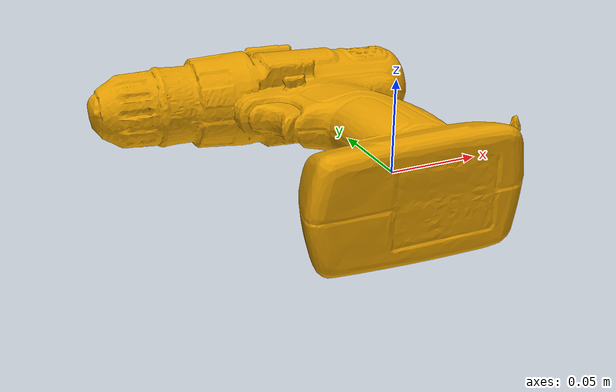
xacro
<robot  xmlns:xacro="http://ros.org/wiki/xacro" name="power_drill_model">
  <xacro:include filename="$(find mobipick_description)/urdf/common_properties.urdf.xacro" />

  <xacro:property name="mass" value="1.284" />

  <link name="power_drill">
    <inertial>
      <origin xyz="-0.03071469 0.02435085 0.02356763" rpy="0 0 0" />
      <mass value="${mass}" />
      <inertia
        ixx="${mass * 0.003988511412844956}"
        ixy="${mass * 0.0004112614213275305}"
        ixz="${mass * 0.00003166287680811595}"
        iyy="${mass * 0.0016270423052260282}"
        iyz="${mass * 0.0000807201704454}"
        izz="${mass * 0.00534355593909}" />
    </inertial>
    <visual>
      <origin xyz="0 0 0" rpy="0 0 0" />
      <geometry>
        <mesh filename="package://mobipick_gazebo/meshes/power_drill.dae" />
      </geometry>
    </visual>
    <collision>
      <origin xyz="0 0 0" rpy="0 0 0" />
      <geometry>
        <mesh filename="package://mobipick_gazebo/meshes/power_drill.dae" />
      </geometry>
    </collision>
  </link>

  <gazebo reference="power_drill">
    <mu1>5.0</mu1> <!-- high friction -->
    <mu2>5.0</mu2>
    <kp>1e+06</kp> <!-- high stiffness -->
    <kd>1.0</kd> <!-- normal damping -->
    <minDepth>0.002</minDepth> <!-- persistent contact with the gripper pads, see robotiq_fingertips_65mm.xacro -->
  </gazebo>

</robot>
